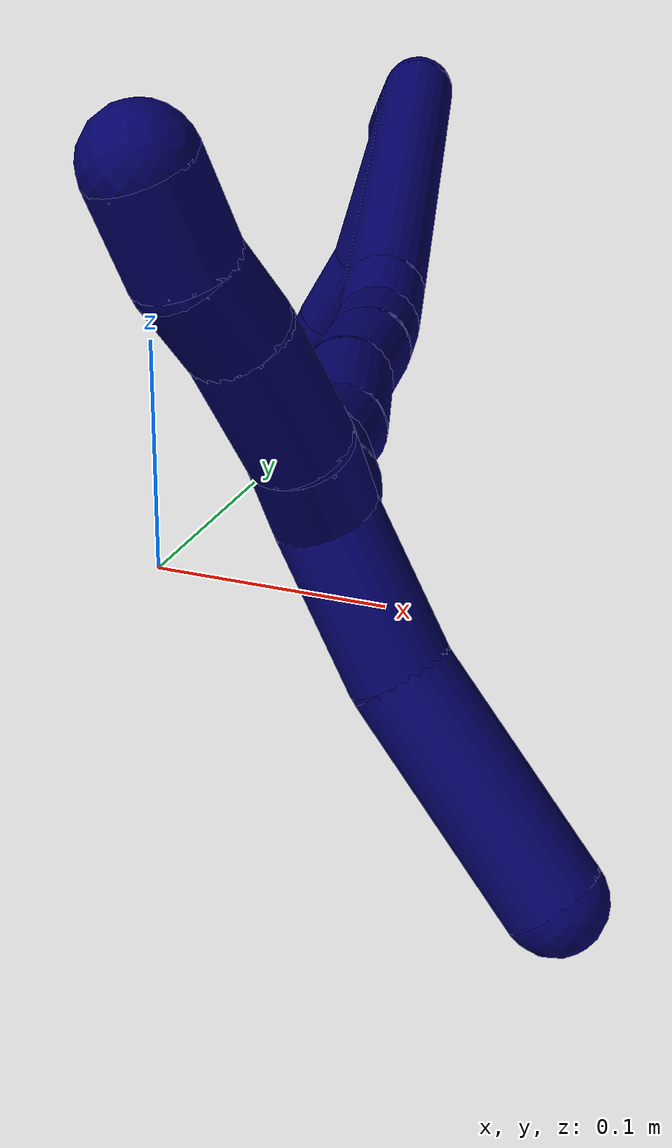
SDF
<sdf version="1.7">
 <world name="default">
  <model name="7">
   <static>0</static>
   <link name="7">
    <collision name="collision-cylinder-e_1_2_8">
     <pose>0.019074 -0.000926 -0.031902 3.11258 0.538685 3.03657</pose>
     <geometry><cylinder><radius>0.0125</radius><length>0.074362</length></cylinder></geometry>
     <surface>
      <friction><ode><mu>1.16</mu><mu2>1.16</mu2><slip1>0</slip1><slip2>0</slip2></ode></friction>
      <contact><ode><kp>1e+06</kp><kd>1</kd><max_vel>0</max_vel><min_depth>0.001</min_depth></ode></contact>
     </surface>
    </collision>
    <visual name="visual-cylinder-e_1_2_8">
     <pose>0.019074 -0.000926 -0.031902 3.11258 0.538685 3.03657</pose>
     <geometry><cylinder><radius>0.0125</radius><length>0.074362</length></cylinder></geometry>
     <material><ambient>0.003922 0 0.403922 1</ambient></material>
    </visual>
    <collision name="collision-cylinder-e_2_8_9">
     <pose>0.043565 -0.003627 -0.079297 3.02754 0.334316 2.48909</pose>
     <geometry><cylinder><radius>0.0125</radius><length>0.033016</length></cylinder></geometry>
     <surface>
      <friction><ode><mu>1.16</mu><mu2>1.16</mu2><slip1>0</slip1><slip2>0</slip2></ode></friction>
      <contact><ode><kp>1e+06</kp><kd>1</kd><max_vel>0</max_vel><min_depth>0.001</min_depth></ode></contact>
     </surface>
    </collision>
    <visual name="visual-cylinder-e_2_8_9">
     <pose>0.043565 -0.003627 -0.079297 3.02754 0.334316 2.48909</pose>
     <geometry><cylinder><radius>0.0125</radius><length>0.033016</length></cylinder></geometry>
     <material><ambient>0.003922 0 0.403922 1</ambient></material>
    </visual>
    <collision name="collision-cylinder-e_3_9_6">
     <pose>0.057588 -0.007715 -0.114148 3.02263 0.415709 2.5912</pose>
     <geometry><cylinder><radius>0.0125</radius><length>0.042622</length></cylinder></geometry>
     <surface>
      <friction><ode><mu>1.16</mu><mu2>1.16</mu2><slip1>0</slip1><slip2>0</slip2></ode></friction>
      <contact><ode><kp>1e+06</kp><kd>1</kd><max_vel>0</max_vel><min_depth>0.001</min_depth></ode></contact>
     </surface>
    </collision>
    <visual name="visual-cylinder-e_3_9_6">
     <pose>0.057588 -0.007715 -0.114148 3.02263 0.415709 2.5912</pose>
     <geometry><cylinder><radius>0.0125</radius><length>0.042622</length></cylinder></geometry>
     <material><ambient>0.003922 0 0.403922 1</ambient></material>
    </visual>
    <collision name="collision-cylinder-e_1_2_10">
     <pose>-0.002045 0.007495 -0.012339 -2.59574 -0.140718 0.493301</pose>
     <geometry><cylinder><radius>0.0125</radius><length>0.029163</length></cylinder></geometry>
     <surface>
      <friction><ode><mu>1.16</mu><mu2>1.16</mu2><slip1>0</slip1><slip2>0</slip2></ode></friction>
      <contact><ode><kp>1e+06</kp><kd>1</kd><max_vel>0</max_vel><min_depth>0.001</min_depth></ode></contact>
     </surface>
    </collision>
    <visual name="visual-cylinder-e_1_2_10">
     <pose>-0.002045 0.007495 -0.012339 -2.59574 -0.140718 0.493301</pose>
     <geometry><cylinder><radius>0.0125</radius><length>0.029163</length></cylinder></geometry>
     <material><ambient>0.003922 0 0.403922 1</ambient></material>
    </visual>
    <collision name="collision-cylinder-e_2_10_11">
     <pose>-0.006186 0.022779 -0.037262 -2.58733 -0.140701 0.485682</pose>
     <geometry><cylinder><radius>0.0125</radius><length>0.029894</length></cylinder></geometry>
     <surface>
      <friction><ode><mu>1.16</mu><mu2>1.16</mu2><slip1>0</slip1><slip2>0</slip2></ode></friction>
      <contact><ode><kp>1e+06</kp><kd>1</kd><max_vel>0</max_vel><min_depth>0.001</min_depth></ode></contact>
     </surface>
    </collision>
    <visual name="visual-cylinder-e_2_10_11">
     <pose>-0.006186 0.022779 -0.037262 -2.58733 -0.140701 0.485682</pose>
     <geometry><cylinder><radius>0.0125</radius><length>0.029894</length></cylinder></geometry>
     <material><ambient>0.003922 0 0.403922 1</ambient></material>
    </visual>
    <collision name="collision-cylinder-e_3_11_12">
     <pose>-0.009258 0.037699 -0.057411 -2.38579 -0.093587 0.234835</pose>
     <geometry><cylinder><radius>0.0125</radius><length>0.020884</length></cylinder></geometry>
     <surface>
      <friction><ode><mu>1.16</mu><mu2>1.16</mu2><slip1>0</slip1><slip2>0</slip2></ode></friction>
      <contact><ode><kp>1e+06</kp><kd>1</kd><max_vel>0</max_vel><min_depth>0.001</min_depth></ode></contact>
     </surface>
    </collision>
    <visual name="visual-cylinder-e_3_11_12">
     <pose>-0.009258 0.037699 -0.057411 -2.38579 -0.093587 0.234835</pose>
     <geometry><cylinder><radius>0.0125</radius><length>0.020884</length></cylinder></geometry>
     <material><ambient>0.003922 0 0.403922 1</ambient></material>
    </visual>
    <collision name="collision-cylinder-e_4_12_5">
     <pose>-0.010961 0.051649 -0.072296 -2.39153 -0.072531 0.183808</pose>
     <geometry><cylinder><radius>0.0125</radius><length>0.020059</length></cylinder></geometry>
     <surface>
      <friction><ode><mu>1.16</mu><mu2>1.16</mu2><slip1>0</slip1><slip2>0</slip2></ode></friction>
      <contact><ode><kp>1e+06</kp><kd>1</kd><max_vel>0</max_vel><min_depth>0.001</min_depth></ode></contact>
     </surface>
    </collision>
    <visual name="visual-cylinder-e_4_12_5">
     <pose>-0.010961 0.051649 -0.072296 -2.39153 -0.072531 0.183808</pose>
     <geometry><cylinder><radius>0.0125</radius><length>0.020059</length></cylinder></geometry>
     <material><ambient>0.003922 0 0.403922 1</ambient></material>
    </visual>
    <collision name="collision-cylinder-e_1_2_13">
     <pose>0.043562 -0.04623 0.021037 1.14375 0.70893 0.467685</pose>
     <geometry><cylinder><radius>0.0125</radius><length>0.133826</length></cylinder></geometry>
     <surface>
      <friction><ode><mu>1.16</mu><mu2>1.16</mu2><slip1>0</slip1><slip2>0</slip2></ode></friction>
      <contact><ode><kp>1e+06</kp><kd>1</kd><max_vel>0</max_vel><min_depth>0.001</min_depth></ode></contact>
     </surface>
    </collision>
    <visual name="visual-cylinder-e_1_2_13">
     <pose>0.043562 -0.04623 0.021037 1.14375 0.70893 0.467685</pose>
     <geometry><cylinder><radius>0.0125</radius><length>0.133826</length></cylinder></geometry>
     <material><ambient>0.003922 0 0.403922 1</ambient></material>
    </visual>
    <collision name="collision-cylinder-e_2_13_14">
     <pose>0.093783 -0.099985 0.045943 1.09585 0.666767 0.416546</pose>
     <geometry><cylinder><radius>0.0125</radius><length>0.021536</length></cylinder></geometry>
     <surface>
      <friction><ode><mu>1.16</mu><mu2>1.16</mu2><slip1>0</slip1><slip2>0</slip2></ode></friction>
      <contact><ode><kp>1e+06</kp><kd>1</kd><max_vel>0</max_vel><min_depth>0.001</min_depth></ode></contact>
     </surface>
    </collision>
    <visual name="visual-cylinder-e_2_13_14">
     <pose>0.093783 -0.099985 0.045943 1.09585 0.666767 0.416546</pose>
     <geometry><cylinder><radius>0.0125</radius><length>0.021536</length></cylinder></geometry>
     <material><ambient>0.003922 0 0.403922 1</ambient></material>
    </visual>
    <collision name="collision-cylinder-e_3_14_15">
     <pose>0.105307 -0.116024 0.055722 0.964057 0.438789 0.232276</pose>
     <geometry><cylinder><radius>0.0125</radius><length>0.022898</length></cylinder></geometry>
     <surface>
      <friction><ode><mu>1.16</mu><mu2>1.16</mu2><slip1>0</slip1><slip2>0</slip2></ode></friction>
      <contact><ode><kp>1e+06</kp><kd>1</kd><max_vel>0</max_vel><min_depth>0.001</min_depth></ode></contact>
     </surface>
    </collision>
    <visual name="visual-cylinder-e_3_14_15">
     <pose>0.105307 -0.116024 0.055722 0.964057 0.438789 0.232276</pose>
     <geometry><cylinder><radius>0.0125</radius><length>0.022898</length></cylinder></geometry>
     <material><ambient>0.003922 0 0.403922 1</ambient></material>
    </visual>
    <collision name="collision-cylinder-e_4_15_16">
     <pose>0.115535 -0.135202 0.067737 1.0508 0.41165 0.240911</pose>
     <geometry><cylinder><radius>0.0125</radius><length>0.026816</length></cylinder></geometry>
     <surface>
      <friction><ode><mu>1.16</mu><mu2>1.16</mu2><slip1>0</slip1><slip2>0</slip2></ode></friction>
      <contact><ode><kp>1e+06</kp><kd>1</kd><max_vel>0</max_vel><min_depth>0.001</min_depth></ode></contact>
     </surface>
    </collision>
    <visual name="visual-cylinder-e_4_15_16">
     <pose>0.115535 -0.135202 0.067737 1.0508 0.41165 0.240911</pose>
     <geometry><cylinder><radius>0.0125</radius><length>0.026816</length></cylinder></geometry>
     <material><ambient>0.003922 0 0.403922 1</ambient></material>
    </visual>
    <collision name="collision-cylinder-e_5_16_17">
     <pose>0.129349 -0.157013 0.081928 0.943323 0.550275 0.28601</pose>
     <geometry><cylinder><radius>0.0125</radius><length>0.032312</length></cylinder></geometry>
     <surface>
      <friction><ode><mu>1.16</mu><mu2>1.16</mu2><slip1>0</slip1><slip2>0</slip2></ode></friction>
      <contact><ode><kp>1e+06</kp><kd>1</kd><max_vel>0</max_vel><min_depth>0.001</min_depth></ode></contact>
     </surface>
    </collision>
    <visual name="visual-cylinder-e_5_16_17">
     <pose>0.129349 -0.157013 0.081928 0.943323 0.550275 0.28601</pose>
     <geometry><cylinder><radius>0.0125</radius><length>0.032312</length></cylinder></geometry>
     <material><ambient>0.003922 0 0.403922 1</ambient></material>
    </visual>
    <collision name="collision-cylinder-e_6_17_18">
     <pose>0.141503 -0.177069 0.095792 0.995309 0.335783 0.183633</pose>
     <geometry><cylinder><radius>0.0125</radius><length>0.022492</length></cylinder></geometry>
     <surface>
      <friction><ode><mu>1.16</mu><mu2>1.16</mu2><slip1>0</slip1><slip2>0</slip2></ode></friction>
      <contact><ode><kp>1e+06</kp><kd>1</kd><max_vel>0</max_vel><min_depth>0.001</min_depth></ode></contact>
     </surface>
    </collision>
    <visual name="visual-cylinder-e_6_17_18">
     <pose>0.141503 -0.177069 0.095792 0.995309 0.335783 0.183633</pose>
     <geometry><cylinder><radius>0.0125</radius><length>0.022492</length></cylinder></geometry>
     <material><ambient>0.003922 0 0.403922 1</ambient></material>
    </visual>
    <collision name="collision-cylinder-e_7_18_19">
     <pose>0.150557 -0.191497 0.108045 0.706057 0.561207 0.211595</pose>
     <geometry><cylinder><radius>0.0125</radius><length>0.020098</length></cylinder></geometry>
     <surface>
      <friction><ode><mu>1.16</mu><mu2>1.16</mu2><slip1>0</slip1><slip2>0</slip2></ode></friction>
      <contact><ode><kp>1e+06</kp><kd>1</kd><max_vel>0</max_vel><min_depth>0.001</min_depth></ode></contact>
     </surface>
    </collision>
    <visual name="visual-cylinder-e_7_18_19">
     <pose>0.150557 -0.191497 0.108045 0.706057 0.561207 0.211595</pose>
     <geometry><cylinder><radius>0.0125</radius><length>0.020098</length></cylinder></geometry>
     <material><ambient>0.003922 0 0.403922 1</ambient></material>
    </visual>
    <collision name="collision-cylinder-e_8_19_1">
     <pose>0.160292 -0.203689 0.120557 0.83518 0.453598 0.204067</pose>
     <geometry><cylinder><radius>0.0125</radius><length>0.020021</length></cylinder></geometry>
     <surface>
      <friction><ode><mu>1.16</mu><mu2>1.16</mu2><slip1>0</slip1><slip2>0</slip2></ode></friction>
      <contact><ode><kp>1e+06</kp><kd>1</kd><max_vel>0</max_vel><min_depth>0.001</min_depth></ode></contact>
     </surface>
    </collision>
    <visual name="visual-cylinder-e_8_19_1">
     <pose>0.160292 -0.203689 0.120557 0.83518 0.453598 0.204067</pose>
     <geometry><cylinder><radius>0.0125</radius><length>0.020021</length></cylinder></geometry>
     <material><ambient>0.003922 0 0.403922 1</ambient></material>
    </visual>
    <collision name="collision-cylinder-e_1_1_20">
     <pose>0.158252 -0.215499 0.133985 0.607594 -0.620052 -0.200193</pose>
     <geometry><cylinder><radius>0.0125</radius><length>0.02212</length></cylinder></geometry>
     <surface>
      <friction><ode><mu>1.16</mu><mu2>1.16</mu2><slip1>0</slip1><slip2>0</slip2></ode></friction>
      <contact><ode><kp>1e+06</kp><kd>1</kd><max_vel>0</max_vel><min_depth>0.001</min_depth></ode></contact>
     </surface>
    </collision>
    <visual name="visual-cylinder-e_1_1_20">
     <pose>0.158252 -0.215499 0.133985 0.607594 -0.620052 -0.200193</pose>
     <geometry><cylinder><radius>0.0125</radius><length>0.02212</length></cylinder></geometry>
     <material><ambient>0.003922 0 0.403922 1</ambient></material>
    </visual>
    <collision name="collision-cylinder-e_2_20_21">
     <pose>0.141172 -0.229185 0.150643 0.744946 -0.701587 -0.284019</pose>
     <geometry><cylinder><radius>0.0125</radius><length>0.033011</length></cylinder></geometry>
     <surface>
      <friction><ode><mu>1.16</mu><mu2>1.16</mu2><slip1>0</slip1><slip2>0</slip2></ode></friction>
      <contact><ode><kp>1e+06</kp><kd>1</kd><max_vel>0</max_vel><min_depth>0.001</min_depth></ode></contact>
     </surface>
    </collision>
    <visual name="visual-cylinder-e_2_20_21">
     <pose>0.141172 -0.229185 0.150643 0.744946 -0.701587 -0.284019</pose>
     <geometry><cylinder><radius>0.0125</radius><length>0.033011</length></cylinder></geometry>
     <material><ambient>0.003922 0 0.403922 1</ambient></material>
    </visual>
    <collision name="collision-cylinder-e_3_21_22">
     <pose>0.124157 -0.244036 0.164889 0.902437 -0.669811 -0.334124</pose>
     <geometry><cylinder><radius>0.0125</radius><length>0.020494</length></cylinder></geometry>
     <surface>
      <friction><ode><mu>1.16</mu><mu2>1.16</mu2><slip1>0</slip1><slip2>0</slip2></ode></friction>
      <contact><ode><kp>1e+06</kp><kd>1</kd><max_vel>0</max_vel><min_depth>0.001</min_depth></ode></contact>
     </surface>
    </collision>
    <visual name="visual-cylinder-e_3_21_22">
     <pose>0.124157 -0.244036 0.164889 0.902437 -0.669811 -0.334124</pose>
     <geometry><cylinder><radius>0.0125</radius><length>0.020494</length></cylinder></geometry>
     <material><ambient>0.003922 0 0.403922 1</ambient></material>
    </visual>
    <collision name="collision-cylinder-e_4_22_4">
     <pose>0.108982 -0.25541 0.176588 0.646207 -0.808309 -0.284485</pose>
     <geometry><cylinder><radius>0.0125</radius><length>0.024375</length></cylinder></geometry>
     <surface>
      <friction><ode><mu>1.16</mu><mu2>1.16</mu2><slip1>0</slip1><slip2>0</slip2></ode></friction>
      <contact><ode><kp>1e+06</kp><kd>1</kd><max_vel>0</max_vel><min_depth>0.001</min_depth></ode></contact>
     </surface>
    </collision>
    <visual name="visual-cylinder-e_4_22_4">
     <pose>0.108982 -0.25541 0.176588 0.646207 -0.808309 -0.284485</pose>
     <geometry><cylinder><radius>0.0125</radius><length>0.024375</length></cylinder></geometry>
     <material><ambient>0.003922 0 0.403922 1</ambient></material>
    </visual>
    <collision name="collision-cylinder-e_1_1_23">
     <pose>0.183937 -0.20698 0.123305 -2.34262 1.33055 -2.15428</pose>
     <geometry><cylinder><radius>0.0125</radius><length>0.039656</length></cylinder></geometry>
     <surface>
      <friction><ode><mu>1.16</mu><mu2>1.16</mu2><slip1>0</slip1><slip2>0</slip2></ode></friction>
      <contact><ode><kp>1e+06</kp><kd>1</kd><max_vel>0</max_vel><min_depth>0.001</min_depth></ode></contact>
     </surface>
    </collision>
    <visual name="visual-cylinder-e_1_1_23">
     <pose>0.183937 -0.20698 0.123305 -2.34262 1.33055 -2.15428</pose>
     <geometry><cylinder><radius>0.0125</radius><length>0.039656</length></cylinder></geometry>
     <material><ambient>0.003922 0 0.403922 1</ambient></material>
    </visual>
    <collision name="collision-cylinder-e_2_23_3">
     <pose>0.232446 -0.196204 0.119743 -1.6075 1.32303 -1.35878</pose>
     <geometry><cylinder><radius>0.0125</radius><length>0.060344</length></cylinder></geometry>
     <surface>
      <friction><ode><mu>1.16</mu><mu2>1.16</mu2><slip1>0</slip1><slip2>0</slip2></ode></friction>
      <contact><ode><kp>1e+06</kp><kd>1</kd><max_vel>0</max_vel><min_depth>0.001</min_depth></ode></contact>
     </surface>
    </collision>
    <visual name="visual-cylinder-e_2_23_3">
     <pose>0.232446 -0.196204 0.119743 -1.6075 1.32303 -1.35878</pose>
     <geometry><cylinder><radius>0.0125</radius><length>0.060344</length></cylinder></geometry>
     <material><ambient>0.003922 0 0.403922 1</ambient></material>
    </visual>
    <collision name="collision-sphere-3">
     <pose>0.261697 -0.18881 0.119471 0 -0 0</pose>
     <geometry><sphere><radius>0.0125</radius></sphere></geometry>
     <surface>
      <friction><ode><mu>1.16</mu><mu2>1.16</mu2><slip1>0</slip1><slip2>0</slip2></ode></friction>
      <contact><ode><kp>1e+06</kp><kd>1</kd><max_vel>0</max_vel><min_depth>0.001</min_depth></ode></contact>
     </surface>
    </collision>
    <visual name="visual-sphere-3">
     <pose>0.261697 -0.18881 0.119471 0 -0 0</pose>
     <geometry><sphere><radius>0.0125</radius></sphere></geometry>
     <material><ambient>0.003922 0 0.403922 1</ambient></material>
    </visual>
    <collision name="collision-sphere-23">
     <pose>0.203195 -0.203599 0.120014 0 -0 0</pose>
     <geometry><sphere><radius>0.0125</radius></sphere></geometry>
     <surface>
      <friction><ode><mu>1.16</mu><mu2>1.16</mu2><slip1>0</slip1><slip2>0</slip2></ode></friction>
      <contact><ode><kp>1e+06</kp><kd>1</kd><max_vel>0</max_vel><min_depth>0.001</min_depth></ode></contact>
     </surface>
    </collision>
    <visual name="visual-sphere-23">
     <pose>0.203195 -0.203599 0.120014 0 -0 0</pose>
     <geometry><sphere><radius>0.0125</radius></sphere></geometry>
     <material><ambient>0.003922 0 0.403922 1</ambient></material>
    </visual>
    <collision name="collision-sphere-4">
     <pose>0.100169 -0.260479 0.183309 0 -0 0</pose>
     <geometry><sphere><radius>0.0125</radius></sphere></geometry>
     <surface>
      <friction><ode><mu>1.16</mu><mu2>1.16</mu2><slip1>0</slip1><slip2>0</slip2></ode></friction>
      <contact><ode><kp>1e+06</kp><kd>1</kd><max_vel>0</max_vel><min_depth>0.001</min_depth></ode></contact>
     </surface>
    </collision>
    <visual name="visual-sphere-4">
     <pose>0.100169 -0.260479 0.183309 0 -0 0</pose>
     <geometry><sphere><radius>0.0125</radius></sphere></geometry>
     <material><ambient>0.003922 0 0.403922 1</ambient></material>
    </visual>
    <collision name="collision-sphere-22">
     <pose>0.117795 -0.250341 0.169867 0 -0 0</pose>
     <geometry><sphere><radius>0.0125</radius></sphere></geometry>
     <surface>
      <friction><ode><mu>1.16</mu><mu2>1.16</mu2><slip1>0</slip1><slip2>0</slip2></ode></friction>
      <contact><ode><kp>1e+06</kp><kd>1</kd><max_vel>0</max_vel><min_depth>0.001</min_depth></ode></contact>
     </surface>
    </collision>
    <visual name="visual-sphere-22">
     <pose>0.117795 -0.250341 0.169867 0 -0 0</pose>
     <geometry><sphere><radius>0.0125</radius></sphere></geometry>
     <material><ambient>0.003922 0 0.403922 1</ambient></material>
    </visual>
    <collision name="collision-sphere-21">
     <pose>0.130519 -0.237731 0.159911 0 -0 0</pose>
     <geometry><sphere><radius>0.0125</radius></sphere></geometry>
     <surface>
      <friction><ode><mu>1.16</mu><mu2>1.16</mu2><slip1>0</slip1><slip2>0</slip2></ode></friction>
      <contact><ode><kp>1e+06</kp><kd>1</kd><max_vel>0</max_vel><min_depth>0.001</min_depth></ode></contact>
     </surface>
    </collision>
    <visual name="visual-sphere-21">
     <pose>0.130519 -0.237731 0.159911 0 -0 0</pose>
     <geometry><sphere><radius>0.0125</radius></sphere></geometry>
     <material><ambient>0.003922 0 0.403922 1</ambient></material>
    </visual>
    <collision name="collision-sphere-20">
     <pose>0.151825 -0.220638 0.141375 0 -0 0</pose>
     <geometry><sphere><radius>0.0125</radius></sphere></geometry>
     <surface>
      <friction><ode><mu>1.16</mu><mu2>1.16</mu2><slip1>0</slip1><slip2>0</slip2></ode></friction>
      <contact><ode><kp>1e+06</kp><kd>1</kd><max_vel>0</max_vel><min_depth>0.001</min_depth></ode></contact>
     </surface>
    </collision>
    <visual name="visual-sphere-20">
     <pose>0.151825 -0.220638 0.141375 0 -0 0</pose>
     <geometry><sphere><radius>0.0125</radius></sphere></geometry>
     <material><ambient>0.003922 0 0.403922 1</ambient></material>
    </visual>
    <collision name="collision-sphere-11">
     <pose>-0.008282 0.030568 -0.049846 0 -0 0</pose>
     <geometry><sphere><radius>0.0125</radius></sphere></geometry>
     <surface>
      <friction><ode><mu>1.16</mu><mu2>1.16</mu2><slip1>0</slip1><slip2>0</slip2></ode></friction>
      <contact><ode><kp>1e+06</kp><kd>1</kd><max_vel>0</max_vel><min_depth>0.001</min_depth></ode></contact>
     </surface>
    </collision>
    <visual name="visual-sphere-11">
     <pose>-0.008282 0.030568 -0.049846 0 -0 0</pose>
     <geometry><sphere><radius>0.0125</radius></sphere></geometry>
     <material><ambient>0.003922 0 0.403922 1</ambient></material>
    </visual>
    <collision name="collision-sphere-10">
     <pose>-0.00409 0.01499 -0.024678 0 -0 0</pose>
     <geometry><sphere><radius>0.0125</radius></sphere></geometry>
     <surface>
      <friction><ode><mu>1.16</mu><mu2>1.16</mu2><slip1>0</slip1><slip2>0</slip2></ode></friction>
      <contact><ode><kp>1e+06</kp><kd>1</kd><max_vel>0</max_vel><min_depth>0.001</min_depth></ode></contact>
     </surface>
    </collision>
    <visual name="visual-sphere-10">
     <pose>-0.00409 0.01499 -0.024678 0 -0 0</pose>
     <geometry><sphere><radius>0.0125</radius></sphere></geometry>
     <material><ambient>0.003922 0 0.403922 1</ambient></material>
    </visual>
    <collision name="collision-sphere-6">
     <pose>0.066194 -0.010029 -0.133506 0 -0 0</pose>
     <geometry><sphere><radius>0.0125</radius></sphere></geometry>
     <surface>
      <friction><ode><mu>1.16</mu><mu2>1.16</mu2><slip1>0</slip1><slip2>0</slip2></ode></friction>
      <contact><ode><kp>1e+06</kp><kd>1</kd><max_vel>0</max_vel><min_depth>0.001</min_depth></ode></contact>
     </surface>
    </collision>
    <visual name="visual-sphere-6">
     <pose>0.066194 -0.010029 -0.133506 0 -0 0</pose>
     <geometry><sphere><radius>0.0125</radius></sphere></geometry>
     <material><ambient>0.003922 0 0.403922 1</ambient></material>
    </visual>
    <collision name="collision-sphere-9">
     <pose>0.048982 -0.005401 -0.09479 0 -0 0</pose>
     <geometry><sphere><radius>0.0125</radius></sphere></geometry>
     <surface>
      <friction><ode><mu>1.16</mu><mu2>1.16</mu2><slip1>0</slip1><slip2>0</slip2></ode></friction>
      <contact><ode><kp>1e+06</kp><kd>1</kd><max_vel>0</max_vel><min_depth>0.001</min_depth></ode></contact>
     </surface>
    </collision>
    <visual name="visual-sphere-9">
     <pose>0.048982 -0.005401 -0.09479 0 -0 0</pose>
     <geometry><sphere><radius>0.0125</radius></sphere></geometry>
     <material><ambient>0.003922 0 0.403922 1</ambient></material>
    </visual>
    <collision name="collision-sphere-2">
     <geometry><sphere><radius>0.0125</radius></sphere></geometry>
     <surface>
      <friction><ode><mu>1.16</mu><mu2>1.16</mu2><slip1>0</slip1><slip2>0</slip2></ode></friction>
      <contact><ode><kp>1e+06</kp><kd>1</kd><max_vel>0</max_vel><min_depth>0.001</min_depth></ode></contact>
     </surface>
    </collision>
    <visual name="visual-sphere-2">
     <geometry><sphere><radius>0.0125</radius></sphere></geometry>
     <material><ambient>0.003922 0 0.403922 1</ambient></material>
    </visual>
    <collision name="collision-sphere-19">
     <pose>0.155905 -0.197017 0.114518 0 -0 0</pose>
     <geometry><sphere><radius>0.0125</radius></sphere></geometry>
     <surface>
      <friction><ode><mu>1.16</mu><mu2>1.16</mu2><slip1>0</slip1><slip2>0</slip2></ode></friction>
      <contact><ode><kp>1e+06</kp><kd>1</kd><max_vel>0</max_vel><min_depth>0.001</min_depth></ode></contact>
     </surface>
    </collision>
    <visual name="visual-sphere-19">
     <pose>0.155905 -0.197017 0.114518 0 -0 0</pose>
     <geometry><sphere><radius>0.0125</radius></sphere></geometry>
     <material><ambient>0.003922 0 0.403922 1</ambient></material>
    </visual>
    <collision name="collision-sphere-8">
     <pose>0.038148 -0.001852 -0.063805 0 -0 0</pose>
     <geometry><sphere><radius>0.0125</radius></sphere></geometry>
     <surface>
      <friction><ode><mu>1.16</mu><mu2>1.16</mu2><slip1>0</slip1><slip2>0</slip2></ode></friction>
      <contact><ode><kp>1e+06</kp><kd>1</kd><max_vel>0</max_vel><min_depth>0.001</min_depth></ode></contact>
     </surface>
    </collision>
    <visual name="visual-sphere-8">
     <pose>0.038148 -0.001852 -0.063805 0 -0 0</pose>
     <geometry><sphere><radius>0.0125</radius></sphere></geometry>
     <material><ambient>0.003922 0 0.403922 1</ambient></material>
    </visual>
    <collision name="collision-sphere-12">
     <pose>-0.010234 0.04483 -0.064977 0 -0 0</pose>
     <geometry><sphere><radius>0.0125</radius></sphere></geometry>
     <surface>
      <friction><ode><mu>1.16</mu><mu2>1.16</mu2><slip1>0</slip1><slip2>0</slip2></ode></friction>
      <contact><ode><kp>1e+06</kp><kd>1</kd><max_vel>0</max_vel><min_depth>0.001</min_depth></ode></contact>
     </surface>
    </collision>
    <visual name="visual-sphere-12">
     <pose>-0.010234 0.04483 -0.064977 0 -0 0</pose>
     <geometry><sphere><radius>0.0125</radius></sphere></geometry>
     <material><ambient>0.003922 0 0.403922 1</ambient></material>
    </visual>
    <collision name="collision-sphere-5">
     <pose>-0.011688 0.058468 -0.079615 0 -0 0</pose>
     <geometry><sphere><radius>0.0125</radius></sphere></geometry>
     <surface>
      <friction><ode><mu>1.16</mu><mu2>1.16</mu2><slip1>0</slip1><slip2>0</slip2></ode></friction>
      <contact><ode><kp>1e+06</kp><kd>1</kd><max_vel>0</max_vel><min_depth>0.001</min_depth></ode></contact>
     </surface>
    </collision>
    <visual name="visual-sphere-5">
     <pose>-0.011688 0.058468 -0.079615 0 -0 0</pose>
     <geometry><sphere><radius>0.0125</radius></sphere></geometry>
     <material><ambient>0.003922 0 0.403922 1</ambient></material>
    </visual>
    <collision name="collision-sphere-13">
     <pose>0.087124 -0.092459 0.042074 0 -0 0</pose>
     <geometry><sphere><radius>0.0125</radius></sphere></geometry>
     <surface>
      <friction><ode><mu>1.16</mu><mu2>1.16</mu2><slip1>0</slip1><slip2>0</slip2></ode></friction>
      <contact><ode><kp>1e+06</kp><kd>1</kd><max_vel>0</max_vel><min_depth>0.001</min_depth></ode></contact>
     </surface>
    </collision>
    <visual name="visual-sphere-13">
     <pose>0.087124 -0.092459 0.042074 0 -0 0</pose>
     <geometry><sphere><radius>0.0125</radius></sphere></geometry>
     <material><ambient>0.003922 0 0.403922 1</ambient></material>
    </visual>
    <collision name="collision-sphere-14">
     <pose>0.100443 -0.10751 0.049813 0 -0 0</pose>
     <geometry><sphere><radius>0.0125</radius></sphere></geometry>
     <surface>
      <friction><ode><mu>1.16</mu><mu2>1.16</mu2><slip1>0</slip1><slip2>0</slip2></ode></friction>
      <contact><ode><kp>1e+06</kp><kd>1</kd><max_vel>0</max_vel><min_depth>0.001</min_depth></ode></contact>
     </surface>
    </collision>
    <visual name="visual-sphere-14">
     <pose>0.100443 -0.10751 0.049813 0 -0 0</pose>
     <geometry><sphere><radius>0.0125</radius></sphere></geometry>
     <material><ambient>0.003922 0 0.403922 1</ambient></material>
    </visual>
    <collision name="collision-sphere-15">
     <pose>0.110171 -0.124538 0.061632 0 -0 0</pose>
     <geometry><sphere><radius>0.0125</radius></sphere></geometry>
     <surface>
      <friction><ode><mu>1.16</mu><mu2>1.16</mu2><slip1>0</slip1><slip2>0</slip2></ode></friction>
      <contact><ode><kp>1e+06</kp><kd>1</kd><max_vel>0</max_vel><min_depth>0.001</min_depth></ode></contact>
     </surface>
    </collision>
    <visual name="visual-sphere-15">
     <pose>0.110171 -0.124538 0.061632 0 -0 0</pose>
     <geometry><sphere><radius>0.0125</radius></sphere></geometry>
     <material><ambient>0.003922 0 0.403922 1</ambient></material>
    </visual>
    <collision name="collision-sphere-16">
     <pose>0.1209 -0.145865 0.073843 0 -0 0</pose>
     <geometry><sphere><radius>0.0125</radius></sphere></geometry>
     <surface>
      <friction><ode><mu>1.16</mu><mu2>1.16</mu2><slip1>0</slip1><slip2>0</slip2></ode></friction>
      <contact><ode><kp>1e+06</kp><kd>1</kd><max_vel>0</max_vel><min_depth>0.001</min_depth></ode></contact>
     </surface>
    </collision>
    <visual name="visual-sphere-16">
     <pose>0.1209 -0.145865 0.073843 0 -0 0</pose>
     <geometry><sphere><radius>0.0125</radius></sphere></geometry>
     <material><ambient>0.003922 0 0.403922 1</ambient></material>
    </visual>
    <collision name="collision-sphere-17">
     <pose>0.137797 -0.168161 0.090013 0 -0 0</pose>
     <geometry><sphere><radius>0.0125</radius></sphere></geometry>
     <surface>
      <friction><ode><mu>1.16</mu><mu2>1.16</mu2><slip1>0</slip1><slip2>0</slip2></ode></friction>
      <contact><ode><kp>1e+06</kp><kd>1</kd><max_vel>0</max_vel><min_depth>0.001</min_depth></ode></contact>
     </surface>
    </collision>
    <visual name="visual-sphere-17">
     <pose>0.137797 -0.168161 0.090013 0 -0 0</pose>
     <geometry><sphere><radius>0.0125</radius></sphere></geometry>
     <material><ambient>0.003922 0 0.403922 1</ambient></material>
    </visual>
    <collision name="collision-sphere-18">
     <pose>0.145208 -0.185977 0.101571 0 -0 0</pose>
     <geometry><sphere><radius>0.0125</radius></sphere></geometry>
     <surface>
      <friction><ode><mu>1.16</mu><mu2>1.16</mu2><slip1>0</slip1><slip2>0</slip2></ode></friction>
      <contact><ode><kp>1e+06</kp><kd>1</kd><max_vel>0</max_vel><min_depth>0.001</min_depth></ode></contact>
     </surface>
    </collision>
    <visual name="visual-sphere-18">
     <pose>0.145208 -0.185977 0.101571 0 -0 0</pose>
     <geometry><sphere><radius>0.0125</radius></sphere></geometry>
     <material><ambient>0.003922 0 0.403922 1</ambient></material>
    </visual>
    <collision name="collision-sphere-1">
     <pose>0.164678 -0.210361 0.126595 0 -0 0</pose>
     <geometry><sphere><radius>0.0125</radius></sphere></geometry>
     <surface>
      <friction><ode><mu>1.16</mu><mu2>1.16</mu2><slip1>0</slip1><slip2>0</slip2></ode></friction>
      <contact><ode><kp>1e+06</kp><kd>1</kd><max_vel>0</max_vel><min_depth>0.001</min_depth></ode></contact>
     </surface>
    </collision>
    <visual name="visual-sphere-1">
     <pose>0.164678 -0.210361 0.126595 0 -0 0</pose>
     <geometry><sphere><radius>0.0125</radius></sphere></geometry>
     <material><ambient>0.003922 0 0.403922 1</ambient></material>
    </visual>
    <inertial>
     <pose>0.08839 -0.097343 0.040055 0 -0 0</pose>
     <mass>0.75</mass>
     <inertia>
      <ixx>0.000225</ixx>
      <ixy>0</ixy>
      <ixz>0</ixz>
      <iyy>0.000279</iyy>
      <iyz>0</iyz>
      <izz>-3.8e-05</izz>
     </inertia>
    </inertial>
   </link>
   <pose>0.104387 0.018894 0.203041 -0.034066 0.889073 -0.535396</pose>
  </model>
 </world>
</sdf>
